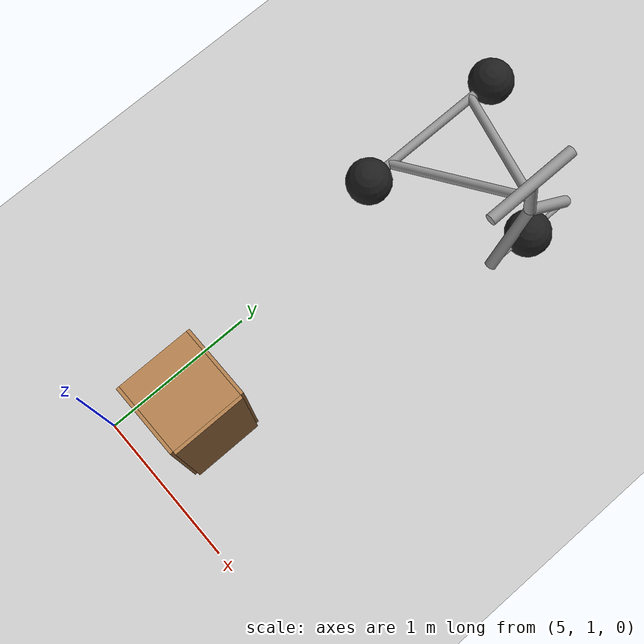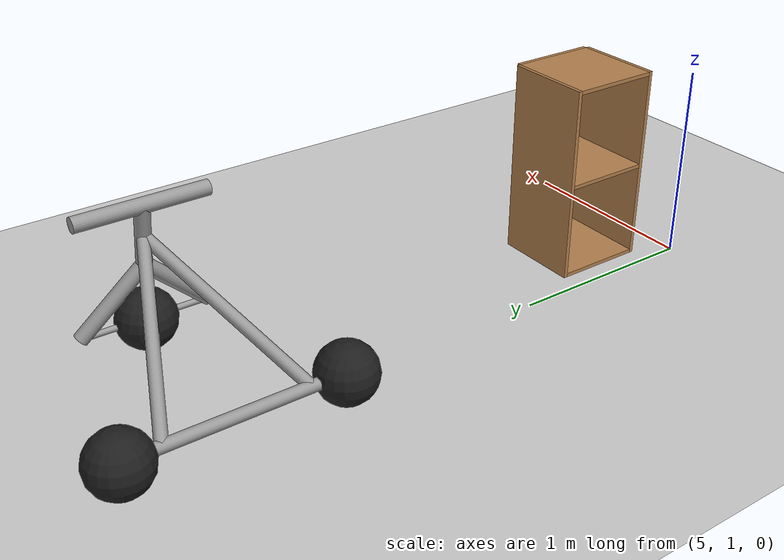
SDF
<sdf version="1.7">
 <world name="default">
  <light name="sun" type="directional">
   <pose>0 0 10 0 -0 0</pose>
   <diffuse>0.8 0.8 0.8 1</diffuse>
   <specular>0.2 0.2 0.2 1</specular>
   <attenuation>
    <range>1000</range>
    <constant>0.9</constant>
    <linear>0.01</linear>
    <quadratic>0.001</quadratic>
   </attenuation>
   <direction>-0.5 0.1 -0.9</direction>
   <spot><inner_angle>0</inner_angle><outer_angle>0</outer_angle><falloff>0</falloff></spot>
  </light>
  <model name="ground_plane">
   <static>1</static>
   <link name="link">
    <collision name="collision">
     <geometry><plane><normal>0 0 1</normal><size>100 100</size></plane></geometry>
     <surface><friction><ode><mu>100</mu><mu2>50</mu2></ode></friction></surface>
    </collision>
    <visual name="visual">
     <cast_shadows>0</cast_shadows>
     <geometry><plane><normal>0 0 1</normal><size>100 100</size></plane></geometry>
     <material>
      <script><uri>file://media/materials/scripts/gazebo.material</uri><name>Gazebo/Grey</name></script>
     </material>
    </visual>
   </link>
  </model>
  <gravity>0 0 -9.8</gravity>
  <magnetic_field>6e-06 2.3e-05 -4.2e-05</magnetic_field>
  <atmosphere type="adiabatic"/>
  <physics type="ode">
   <max_step_size>0.001</max_step_size>
   <real_time_factor>1</real_time_factor>
   <real_time_update_rate>1000</real_time_update_rate>
  </physics>
  <scene><ambient>0.4 0.4 0.4 1</ambient><background>0.7 0.7 0.7 1</background><shadows>1</shadows></scene>
  <audio><device>default</device></audio>
  <spherical_coordinates>
   <surface_model>EARTH_WGS84</surface_model>
   <latitude_deg>0</latitude_deg>
   <longitude_deg>0</longitude_deg>
   <elevation>0</elevation>
   <heading_deg>0</heading_deg>
  </spherical_coordinates>
  <model name="cabinet">
   <static>1</static>
   <link name="cabinet_bottom_plate">
    <inertial>
     <pose>0 0 -1 0 -0 0</pose>
     <inertia><ixx>2.05</ixx><ixy>0</ixy><ixz>0</ixz><iyy>2.05</iyy><iyz>0</iyz><izz>2.05</izz></inertia>
     <mass>25</mass>
    </inertial>
    <collision name="cabinet_bottom_plate_geom">
     <pose>0 0 0.01 0 -0 0</pose>
     <geometry><box><size>0.45 0.45 0.02</size></box></geometry>
    </collision>
    <visual name="cabinet_bottom_plate_geom_visual">
     <pose>0 0 0.01 0 -0 0</pose>
     <geometry><box><size>0.45 0.45 0.02</size></box></geometry>
     <material>
      <script><uri>file://media/materials/scripts/gazebo.material</uri><name>Gazebo/Wood</name></script>
     </material>
    </visual>
    <collision name="cabinet_bottom_plate_geom_cabinet_back_plate">
     <pose>0.235 0 0.51 0 -0 0</pose>
     <geometry><box><size>0.02 0.45 1.02</size></box></geometry>
    </collision>
    <visual name="cabinet_bottom_plate_geom_cabinet_back_plate_visual">
     <pose>0.235 0 0.51 0 -0 0</pose>
     <geometry><box><size>0.02 0.45 1.02</size></box></geometry>
     <material>
      <script><uri>file://media/materials/scripts/gazebo.material</uri><name>Gazebo/Wood</name></script>
     </material>
    </visual>
    <collision name="cabinet_bottom_plate_geom_cabinet_left_plate">
     <pose>0 0.235 0.51 0 -0 0</pose>
     <geometry><box><size>0.45 0.02 1.02</size></box></geometry>
    </collision>
    <visual name="cabinet_bottom_plate_geom_cabinet_left_plate_visual">
     <pose>0 0.235 0.51 0 -0 0</pose>
     <geometry><box><size>0.45 0.02 1.02</size></box></geometry>
     <material>
      <script><uri>file://media/materials/scripts/gazebo.material</uri><name>Gazebo/Wood</name></script>
     </material>
    </visual>
    <collision name="cabinet_bottom_plate_geom_cabinet_middle_plate">
     <pose>0 0 0.51 0 -0 0</pose>
     <geometry><box><size>0.45 0.45 0.02</size></box></geometry>
    </collision>
    <visual name="cabinet_bottom_plate_geom_cabinet_middle_plate_visual">
     <pose>0 0 0.51 0 -0 0</pose>
     <geometry><box><size>0.45 0.45 0.02</size></box></geometry>
     <material>
      <script><uri>file://media/materials/scripts/gazebo.material</uri><name>Gazebo/Wood</name></script>
     </material>
    </visual>
    <collision name="cabinet_bottom_plate_geom_cabinet_right_plate">
     <pose>0 -0.235 0.51 0 -0 0</pose>
     <geometry><box><size>0.45 0.02 1.02</size></box></geometry>
    </collision>
    <visual name="cabinet_bottom_plate_geom_cabinet_right_plate_visual">
     <pose>0 -0.235 0.51 0 -0 0</pose>
     <geometry><box><size>0.45 0.02 1.02</size></box></geometry>
     <material>
      <script><uri>file://media/materials/scripts/gazebo.material</uri><name>Gazebo/Wood</name></script>
     </material>
    </visual>
    <collision name="cabinet_bottom_plate_geom_cabinet_top_plate">
     <pose>0 0 1.01 0 -0 0</pose>
     <geometry><box><size>0.45 0.45 0.02</size></box></geometry>
    </collision>
    <visual name="cabinet_bottom_plate_geom_cabinet_top_plate_visual">
     <pose>0 0 1.01 0 -0 0</pose>
     <geometry><box><size>0.45 0.45 0.02</size></box></geometry>
     <material>
      <script><uri>file://media/materials/scripts/gazebo.material</uri><name>Gazebo/Wood</name></script>
     </material>
    </visual>
   </link>
   <pose>5.32501 1.43148 0 0 -0 0</pose>
  </model>
  <model name="trisphere_cycle">
   <link name="frame">
    <pose>-0.408559 0 0.385023 0 -0.522021 0</pose>
    <inertial>
     <mass>10</mass>
     <inertia><ixx>0.228</ixx><iyy>0.743521</iyy><izz>0.965521</izz><ixy>0</ixy><ixz>0</ixz><iyz>0</iyz></inertia>
    </inertial>
    <collision name="axle_collision">
     <pose>-0.471335 0 0 1.5708 -0 0</pose>
     <geometry><cylinder><length>1.03923</length><radius>0.03</radius></cylinder></geometry>
    </collision>
    <visual name="axle_visual">
     <pose>-0.471335 0 0 1.5708 -0 0</pose>
     <geometry><cylinder><length>1.03923</length><radius>0.03</radius></cylinder></geometry>
     <material>
      <script><uri>file://media/materials/scripts/gazebo.material</uri><name>Gazebo/Grey</name></script>
     </material>
    </visual>
    <collision name="frame_left_collision">
     <pose>0 0.171552 0 -2.79253 1.57079 3.14159</pose>
     <geometry><cylinder><length>1.00317</length><radius>0.03</radius></cylinder></geometry>
    </collision>
    <visual name="frame_left_visual">
     <pose>0 0.171552 0 -2.79253 1.57079 3.14159</pose>
     <geometry><cylinder><length>1.00317</length><radius>0.03</radius></cylinder></geometry>
     <material>
      <script><uri>file://media/materials/scripts/gazebo.material</uri><name>Gazebo/Grey</name></script>
     </material>
    </visual>
    <collision name="frame_right_collision">
     <pose>0 -0.171552 0 2.79253 1.57079 -3.14159</pose>
     <geometry><cylinder><length>1.00317</length><radius>0.03</radius></cylinder></geometry>
    </collision>
    <visual name="frame_right_visual">
     <pose>0 -0.171552 0 2.79253 1.57079 -3.14159</pose>
     <geometry><cylinder><length>1.00317</length><radius>0.03</radius></cylinder></geometry>
     <material>
      <script><uri>file://media/materials/scripts/gazebo.material</uri><name>Gazebo/Grey</name></script>
     </material>
    </visual>
   </link>
   <link name="fork">
    <pose>0.041441 0 0.385023 0 -0.174533 0</pose>
    <inertial>
     <mass>3</mass>
     <inertia>
      <ixx>0.158203</ixx>
      <iyy>0.0583594</iyy>
      <izz>0.102656</izz>
      <ixy>0</ixy>
      <ixz>0</ixz>
      <iyz>0</iyz>
     </inertia>
    </inertial>
    <collision name="handlebars_collision">
     <pose>0 0 0.397748 1.5708 -0 0</pose>
     <geometry><cylinder><length>0.636396</length><radius>0.0375</radius></cylinder></geometry>
    </collision>
    <visual name="handlebars_visual">
     <pose>0 0 0.397748 1.5708 -0 0</pose>
     <geometry><cylinder><length>0.636396</length><radius>0.0375</radius></cylinder></geometry>
     <material>
      <script><uri>file://media/materials/scripts/gazebo.material</uri><name>Gazebo/Grey</name></script>
     </material>
    </visual>
    <collision name="headtube_collision">
     <pose>0 0 0.238649 0 -0 0</pose>
     <geometry><cylinder><length>0.318198</length><radius>0.0375</radius></cylinder></geometry>
    </collision>
    <visual name="headtube_visual">
     <pose>0 0 0.238649 0 -0 0</pose>
     <geometry><cylinder><length>0.318198</length><radius>0.0375</radius></cylinder></geometry>
     <material>
      <script><uri>file://media/materials/scripts/gazebo.material</uri><name>Gazebo/Grey</name></script>
     </material>
    </visual>
    <collision name="spindle_collision">
     <pose>0 0 -0.238649 1.5708 -0 0</pose>
     <geometry><cylinder><length>0.636396</length><radius>0.015</radius></cylinder></geometry>
    </collision>
    <visual name="spindle_visual">
     <pose>0 0 -0.238649 1.5708 -0 0</pose>
     <geometry><cylinder><length>0.636396</length><radius>0.015</radius></cylinder></geometry>
     <material>
      <script><uri>file://media/materials/scripts/gazebo.material</uri><name>Gazebo/Grey</name></script>
     </material>
    </visual>
    <collision name="fork_left_collision">
     <pose>0 0.159099 -0.07955 0.785398 -0 0</pose>
     <geometry><cylinder><length>0.45</length><radius>0.0375</radius></cylinder></geometry>
    </collision>
    <visual name="fork_left_visual">
     <pose>0 0.159099 -0.07955 0.785398 -0 0</pose>
     <geometry><cylinder><length>0.45</length><radius>0.0375</radius></cylinder></geometry>
     <material>
      <script><uri>file://media/materials/scripts/gazebo.material</uri><name>Gazebo/Grey</name></script>
     </material>
    </visual>
    <collision name="fork_right_collision">
     <pose>0 -0.159099 -0.07955 -0.785398 0 0</pose>
     <geometry><cylinder><length>0.45</length><radius>0.0375</radius></cylinder></geometry>
    </collision>
    <visual name="fork_right_visual">
     <pose>0 -0.159099 -0.07955 -0.785398 0 0</pose>
     <geometry><cylinder><length>0.45</length><radius>0.0375</radius></cylinder></geometry>
     <material>
      <script><uri>file://media/materials/scripts/gazebo.material</uri><name>Gazebo/Grey</name></script>
     </material>
    </visual>
   </link>
   <link name="wheel_front">
    <pose>0.082882 0 0.15 0 -0 0</pose>
    <inertial>
     <mass>0.5</mass>
     <inertia><ixx>0.0045</ixx><iyy>0.0045</iyy><izz>0.0045</izz><ixy>0</ixy><ixz>0</ixz><iyz>0</iyz></inertia>
    </inertial>
    <collision name="collision">
     <geometry><sphere><radius>0.15</radius></sphere></geometry>
     <surface><contact><ode><kp>1e+08</kp><kd>1</kd><min_depth>0.0005</min_depth></ode></contact></surface>
    </collision>
    <visual name="visual">
     <geometry><sphere><radius>0.15</radius></sphere></geometry>
     <material>
      <script><uri>file://media/materials/scripts/gazebo.material</uri><name>Gazebo/Black</name></script>
     </material>
    </visual>
   </link>
   <joint name="wheel_front_steer" type="revolute">
    <parent>frame</parent>
    <child>fork</child>
    <axis>
     <xyz>0 0 1</xyz>
     <limit><lower>-0.959931</lower><upper>0.959931</upper></limit>
     <dynamics><spring_reference>0</spring_reference><spring_stiffness>0</spring_stiffness></dynamics>
    </axis>
   </joint>
   <joint name="wheel_front_spin" type="revolute">
    <parent>fork</parent>
    <child>wheel_front</child>
    <axis>
     <xyz>0 1 0</xyz>
     <limit><lower>-1e+16</lower><upper>1e+16</upper></limit>
     <dynamics><spring_reference>0</spring_reference><spring_stiffness>0</spring_stiffness></dynamics>
    </axis>
   </joint>
   <link name="wheel_rear_left">
    <pose>-0.817118 0.519615 0.15 0 -0 0</pose>
    <inertial>
     <mass>0.5</mass>
     <inertia><ixx>0.0045</ixx><iyy>0.0045</iyy><izz>0.0045</izz><ixy>0</ixy><ixz>0</ixz><iyz>0</iyz></inertia>
    </inertial>
    <collision name="collision">
     <geometry><sphere><radius>0.15</radius></sphere></geometry>
     <surface><contact><ode><kp>1e+08</kp><kd>1</kd><min_depth>0.0005</min_depth></ode></contact></surface>
    </collision>
    <visual name="visual">
     <geometry><sphere><radius>0.15</radius></sphere></geometry>
     <material>
      <script><uri>file://media/materials/scripts/gazebo.material</uri><name>Gazebo/Black</name></script>
     </material>
    </visual>
   </link>
   <joint name="wheel_rear_left_spin" type="revolute">
    <parent>frame</parent>
    <child>wheel_rear_left</child>
    <axis>
     <xyz>0 1 0</xyz>
     <limit><lower>-1e+16</lower><upper>1e+16</upper></limit>
     <dynamics><spring_reference>0</spring_reference><spring_stiffness>0</spring_stiffness></dynamics>
    </axis>
   </joint>
   <link name="wheel_rear_right">
    <pose>-0.817118 -0.519615 0.15 0 -0 0</pose>
    <inertial>
     <mass>0.5</mass>
     <inertia><ixx>0.0045</ixx><iyy>0.0045</iyy><izz>0.0045</izz><ixy>0</ixy><ixz>0</ixz><iyz>0</iyz></inertia>
    </inertial>
    <collision name="collision">
     <geometry><sphere><radius>0.15</radius></sphere></geometry>
     <surface><contact><ode><kp>1e+08</kp><kd>1</kd><min_depth>0.0005</min_depth></ode></contact></surface>
    </collision>
    <visual name="visual">
     <geometry><sphere><radius>0.15</radius></sphere></geometry>
     <material>
      <script><uri>file://media/materials/scripts/gazebo.material</uri><name>Gazebo/Black</name></script>
     </material>
    </visual>
   </link>
   <joint name="wheel_rear_right_spin" type="revolute">
    <parent>frame</parent>
    <child>wheel_rear_right</child>
    <axis>
     <xyz>0 1 0</xyz>
     <limit><lower>-1e+16</lower><upper>1e+16</upper></limit>
     <dynamics><spring_reference>0</spring_reference><spring_stiffness>0</spring_stiffness></dynamics>
    </axis>
   </joint>
   <pose>5.68367 3.6802 -0.000501 -0 1e-06 -0.000485</pose>
  </model>
 </world>
</sdf>
